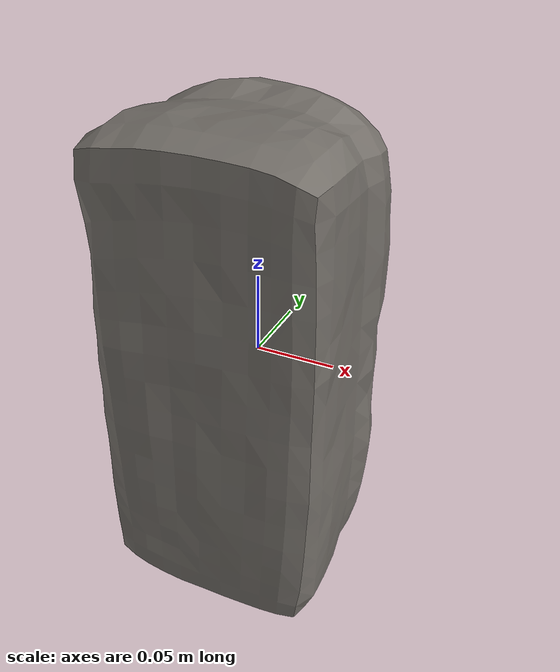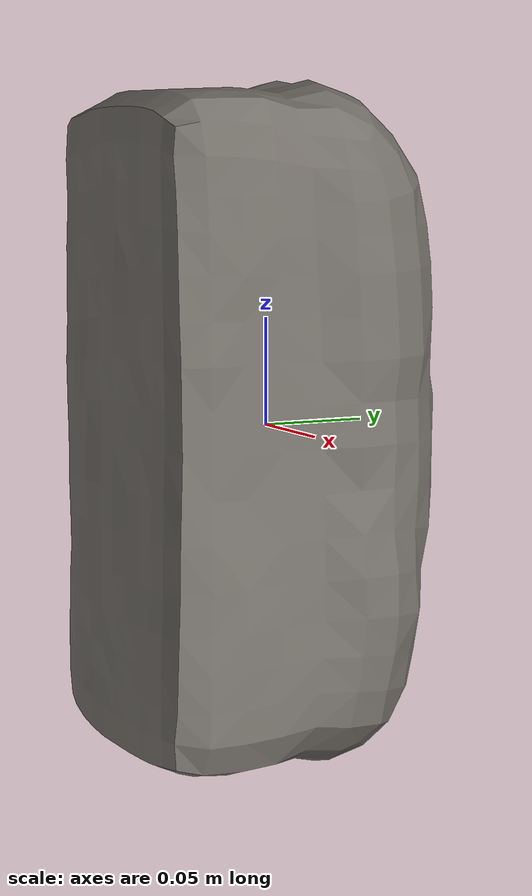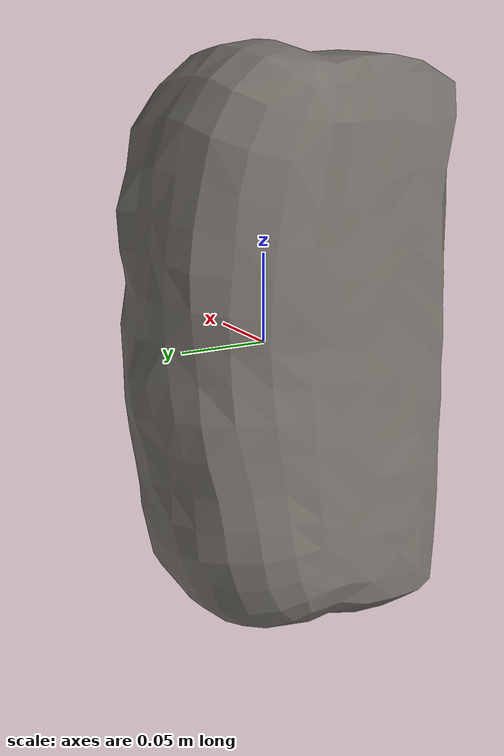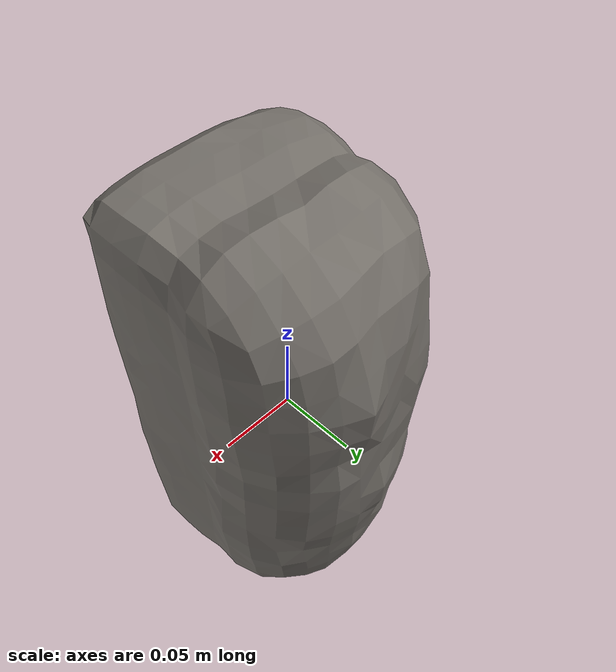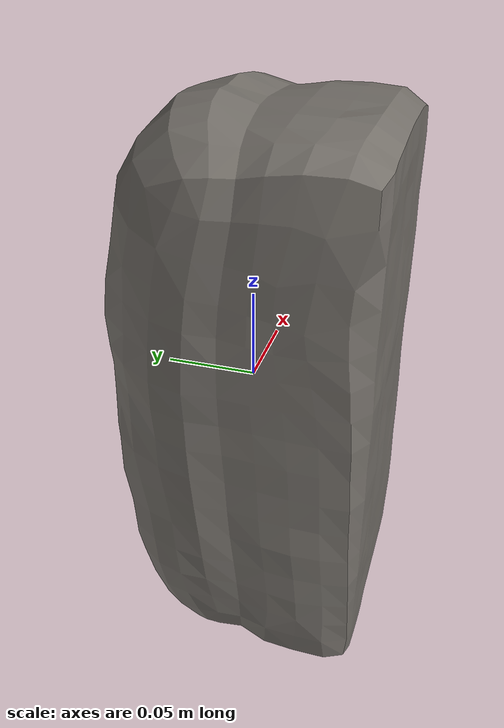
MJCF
<mujoco model="Bread_18">
  <compiler autolimits="true" boundmass="0.01" angle="radian"/>
  <default>
    <default class="/">
      <default class="__VISUAL_MJT__">
        <geom contype="0" conaffinity="0" group="0"/>
      </default>
      <default class="__STRUCTURAL_MJT__">
        <geom contype="8" conaffinity="15" group="4" friction="0.90000000000000002 0.90000000000000002 0.001" solref="0.025000000000000001 1" solimp="0.998 0.998 0.001"/>
      </default>
      <default class="__DYNAMIC_MJT__">
        <geom contype="1" conaffinity="15" group="4" friction="0.90000000000000002 0.90000000000000002 0.001" solref="0.025000000000000001 1" solimp="0.998 0.998 0.001"/>
      </default>
    </default>
  </default>
  <asset>
    <texture name="BumpyBread_Mat3" type="2d" file="BumpyBread_AlbedoTransparency.png"/>
    <material name="material_BumpyBread_Mat3" class="/" texture="BumpyBread_Mat3" specular="0.5" shininess="0.5" rgba="0.60294119999999995 0.60294119999999995 0.60294119999999995 1"/>
    <mesh name="Bread_18_bumpybread_c_mesh" class="/" file="Bread_18_bumpybread_c_mesh/Bread_18_bumpybread_c_mesh.obj" scale="1 1 1"/>
  </asset>
  <worldbody>
    <body name="Bread_18">
      <joint name="Bread_18_free" class="/" type="free" pos="0 0 0" axis="0 0 1" stiffness="0" range="0 0" armature="0" damping="0.10000000000000001" frictionloss="0"/>
      <body name="Bread_18_bumpybread_c_mesh" pos="-0 -0.01157 0" quat="1 0 0 0">
        <geom name="Bread_18_bumpybread_c_mesh" class="__VISUAL_MJT__" type="mesh" material="material_BumpyBread_Mat3" shellinertia="false" mesh="Bread_18_bumpybread_c_mesh"/>
        <geom name="Bread_18_PrimitiveCollider_0" class="__DYNAMIC_MJT__" type="box" size="0.073499113321304321 0.043265342712402344 0.15660716593265533" rgba="0 1 0 1" pos="-0 -0.023774147033691406 0" quat="1 0 0 0"/>
        <geom name="Bread_18_PrimitiveCollider_1" class="__DYNAMIC_MJT__" type="capsule" size="0.068696975708007812 0.092199385166168213" rgba="0 1 0 1" pos="-0 0.021489907056093216 -3.4924596548080444e-09" quat="0.99999999999891198 1.4751396607739272e-06 0 0"/>
      </body>
    </body>
  </worldbody>
</mujoco>
